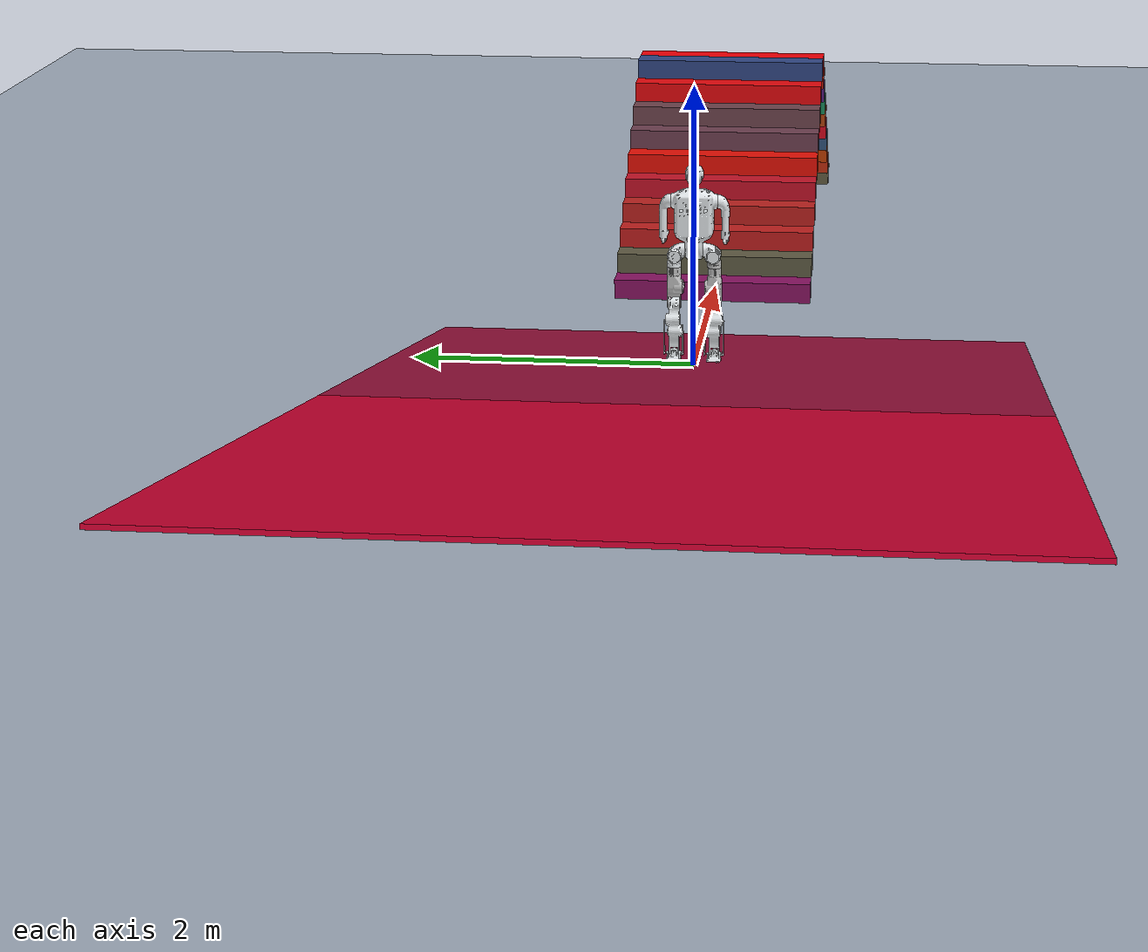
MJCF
<mujoco model="hhfc">
  <compiler angle="radian" meshdir="../meshes/" eulerseq="zyx" />
  <statistic meansize="0.201559" extent="2.948112" center="0.00499457 0 0.337764" />

  <default>
      <joint limited="true" />
      <motor ctrllimited="true" />
      <geom condim="4" contype="1" conaffinity="15" solref="0.001 2" friction="0.9 0.2 0.2" />
      <equality solref="0.001 2" />
      <default class="visualgeom">
          <geom material="visualgeom" condim="1" contype="0" conaffinity="0" />
      </default>
      <default class="visualgeom2">
          <geom material="visualgeom2" condim="1" contype="0" conaffinity="0" />
      </default>
      <default class="obstacle">
          <geom material="obstacle" condim="3" contype="1" conaffinity="15" />
      </default>
      <default class="leg_joint_param">
      <joint damping="0.01" frictionloss="0.01" armature="0.001" />

      </default>
  </default>

  <asset>

    <texture name="grid" type="2d" builtin="checker" width="512" height="512" rgb1=".1 .2 .3" rgb2=".2 .3 .4" />
    <material name="grid" texture="grid" texrepeat="1 1" texuniform="true" reflectance=".2" />
  </asset>

  <option timestep="0.0005" integrator="RK4">
    <flag frictionloss="enable" />
  </option>

  <visual>
    <map stiffness="300" force="0.1" zfar="30" />
    <rgba haze="0.15 0.25 0.35 1" />
    <global offwidth="2560" offheight="1440" elevation="-30" azimuth="120" />
  </visual>

  <asset>
    <mesh name="base_thorax" file="base_thorax.STL" />
    <mesh name="Lleg_hip_p" file="Lleg_hip_p.STL" />
    <mesh name="Lleg_hip_r" file="Lleg_hip_r.STL" />
    <mesh name="Lleg_hip_y" file="Lleg_hip_y.STL" />
    <mesh name="Lleg_knee" file="Lleg_knee.STL" />
    <mesh name="Lleg_ankle_p" file="Lleg_ankle_p.STL" />
    <mesh name="Lleg_ankle_r" file="flat_foot.stl" />
    <mesh name="Rleg_hip_p" file="Rleg_hip_p.STL" />
    <mesh name="Rleg_hip_r" file="Rleg_hip_r.STL" />
    <mesh name="Rleg_hip_y" file="Rleg_hip_y.STL" />
    <mesh name="Rleg_knee" file="Rleg_knee.STL" />
    <mesh name="Rleg_ankle_p" file="Rleg_ankle_p.STL" />
    <mesh name="Rleg_ankle_r" file="flat_foot.stl" />
    <mesh name="Larm_shoulder_p" file="Larm_shoulder_p.STL" />
    <mesh name="Rarm_shoulder_p" file="Rarm_shoulder_p.STL" />

  </asset>

  <worldbody>

    <light name="main_light" diffuse="2 2 2" specular="0.5 0.5 0.5" pos="0 0 40" dir="0 0 -1" castshadow="true" />

    <light name="aux_light1" diffuse=".8 .8 .8" pos=" 10 0 1" dir="-1 0 0" castshadow="false" />
    <light name="aux_light2" diffuse=".8 .8 .8" pos="-10 0 1" dir=" 1 0 0" castshadow="false" />
    <light name="aux_light3" diffuse=".8 .8 .8" pos="0  10 1" dir="0 -1 0" castshadow="false" />
    <light name="aux_light4" diffuse=".8 .8 .8" pos="0 -10 1" dir="0  1 0" castshadow="false" />

    <geom name="floor" type="plane" size="0 0 0.05" material="grid" />

    <body name="base_thorax" pos="0 0 0.94" euler="0 0 0">

      <inertial pos="0.0063842 0.00017156 0.099276" mass="21.7513" fullinertia="0.51774 0.41969 0.193013 3.96E-05 0.000772 0.000516" />
      <freejoint name="base_thorax" />
      <geom size="0.2 0.175 0.3" pos="0 0 0.2" type="box" rgba="0.89804 0.91765 0.92941 0" />
      <geom type="mesh" contype="0" conaffinity="0" group="1" density="0" rgba="0.89804 0.91765 0.92941 1" mesh="base_thorax" />
      <site name="imu_site" pos="0 0 0" size="0.02" rgba="1 0 0 1" type="sphere" />
      <site name="imu" size="0.01" pos="0.0 0 0.0" />

      <body name="Lleg_hip_p" pos="0.0074413 0.070763 -0.096701" quat="1 -1.49195e-05 9.221e-11 -6.1805e-06">

        <inertial pos="-0.0080076 0.037645 -0.018534" quat="0.414257 0.709337 0.188122 0.53837" mass="0.8" diaginertia="0.00249693 0.00187387 0.00185259" />
        <joint name="Lleg_hip_p_joint" pos="0 0 0" axis="0 -1 0" range="-1.5708 3.1416" class="leg_joint_param" />

        <geom type="mesh" contype="0" conaffinity="0" group="1" density="0" rgba="0.89804 0.91765 0.92941 1" mesh="Lleg_hip_p" />

        <body name="Lleg_hip_r" pos="-0.048264 0.063739 -0.039998" quat="1 -1.49194e-05 -1.55901e-05 6.18077e-06">

          <inertial pos="0.042398 0.0021906 -0.014152" quat="0.717776 -0.00466495 -0.115772 0.686566" mass="2.4" diaginertia="0.00470642 0.00421976 0.00322592" />
          <joint name="Lleg_hip_r_joint" pos="0 0 0" axis="1 0 0" range="-0.52359 0.52359" class="leg_joint_param" />
          <geom type="mesh" contype="0" conaffinity="0" group="1" density="0" rgba="0.89804 0.91765 0.92941 1" mesh="Lleg_hip_r" />
          <geom size="0.05 0.1" pos="0.05 0 -0.225" type="cylinder" rgba="0.89804 0.91765 0.92941 0" />

          <body name="Lleg_hip_y" pos="0.048263 0.0075949 -0.073228" quat="1 -0.0006421 0 0">

            <inertial pos="0.0012794 -0.012189 -0.11613" quat="0.996816 -0.0530944 -0.0162506 -0.0572273" mass="4.7" diaginertia="0.0299281 0.0291921 0.00657282" />
            <joint name="Lleg_hip_y_joint" pos="0 0 0" axis="0 0 1" range="-1.0472 1.2217" class="leg_joint_param" />
            <geom type="mesh" contype="0" conaffinity="0" group="1" density="0" rgba="0.75294 0.75294 0.75294 1" mesh="Lleg_hip_y" />

            <body name="Lleg_knee" pos="0 0 -0.27926">

              <inertial pos="-0.0093168 0.0004254 -0.1569" quat="0.997868 -0.0245164 0.0336298 0.0502756" mass="4.4" diaginertia="0.033405 0.0314582 0.0069106" />
              <joint name="Lleg_knee_joint" pos="0 0 0" axis="0 -1 0" range="-1.5708 0" class="leg_joint_param" />

              <geom type="mesh" contype="0" conaffinity="0" group="1" density="0" rgba="0.89804 0.91765 0.92941 1" mesh="Lleg_knee" />
              <geom size="0.05 0.125" pos="0 0 -0.175" type="cylinder" rgba="0.89804 0.91765 0.92941 0" />

              <body name="Lleg_ankle_p" pos="0 0 -0.35">

                <inertial pos="0.00066352 -5.5018e-08 8.196e-09" quat="0.499943 0.499943 -0.500057 0.500057" mass="0.24" diaginertia="0.000135 0.000113 5.24e-05" />
                <joint name="Lleg_ankle_p_joint" pos="0 0 0" axis="0 1 0" range="-1.6108 0.6108" class="leg_joint_param" />
                <geom type="mesh" contype="0" conaffinity="0" group="1" density="0" rgba="0.89804 0.91765 0.92941 1" mesh="Lleg_ankle_p" />

                <body name="Lleg_ankle_r">

                  <inertial pos="0.021653 2.4998e-08 -0.044273" quat="1.13655e-06 0.717415 -1.10364e-06 0.696646" mass="0.88" diaginertia="0.00668964 0.005724 0.00130736" />
                  <joint name="Lleg_ankle_r_joint" pos="0 0 0" axis="1 0 0" range="-0.34453292519943295 0.34453292519943295" class="leg_joint_param" />
                  <geom type="mesh" contype="0" conaffinity="0" group="1" density="0" rgba="0.89804 0.91765 0.92941 1" mesh="Lleg_ankle_r" />
                  <geom name="r_collision_1" type="mesh" rgba="0.89804 0.91765 0.92941 0" mesh="Lleg_ankle_r" />

                </body>
              </body>
            </body>
          </body>
        </body>
      </body>

      <body name="Rleg_hip_p" pos="0.0074402 -0.070762 -0.096701" quat="1 1.49195e-05 -9.221e-11 -6.1805e-06">

        <inertial pos="-0.0080033 -0.037645 -0.018534" quat="0.709009 0.414898 0.538551 0.187424" mass="0.8" diaginertia="0.00249686 0.00187362 0.00185253" />
        <joint name="Rleg_hip_p_joint" pos="0 0 0" axis="0 -1 0" range="-1.5708 3.1416" class="leg_joint_param" />

        <geom type="mesh" contype="0" conaffinity="0" group="1" density="0" rgba="0.89804 0.91765 0.92941 1" mesh="Rleg_hip_p" />

        <body name="Rleg_hip_r" pos="-0.048261 -0.063738 -0.039998" quat="1 -1.49194e-05 -1.55901e-05 6.18077e-06">

          <inertial pos="0.042392 -0.0022474 -0.014239" quat="0.688789 -0.114585 -0.00306577 0.715843" mass="2.4" diaginertia="0.00471825 0.00423405 0.00323269" />
          <joint name="Rleg_hip_r_joint" pos="0 0 0" axis="1 0 0" range="-0.52359 0.52359" class="leg_joint_param" />
          <geom type="mesh" contype="0" conaffinity="0" group="1" density="0" rgba="0.75294 0.75294 0.75294 1" mesh="Rleg_hip_r" />
          <geom size="0.05 0.1" pos="0.05 0 -0.225" type="cylinder" rgba="0.75294 0.75294 0.75294 0" />

          <body name="Rleg_hip_y" pos="0.048263 -0.0075949 -0.073228" quat="1 -0.0006421 1.559e-05 1.00103e-08">

            <inertial pos="0.0012651 0.012199 -0.11598" quat="0.996226 0.0535852 -0.0154666 0.0665041" mass="4.7" diaginertia="0.0298237 0.0290669 0.00653037" />
            <joint name="Rleg_hip_y_joint" pos="0 0 0" axis="0 0 1" range="-1.2217 1.0472" class="leg_joint_param" />
            <geom type="mesh" contype="0" conaffinity="0" group="1" density="0" rgba="0.75294 0.75294 0.75294 1" mesh="Rleg_hip_y" />

            <body name="Rleg_knee" pos="0 0 -0.27926">

              <inertial pos="-0.0080323 -0.0016076 -0.15944" quat="0.503618 0.498429 -0.471667 0.524851" mass="4.4" diaginertia="0.0334195 0.0311732 0.00644732" />
              <joint name="Rleg_knee_joint" pos="0 0 0" axis="0 -1 0" range="-1.5708 0" class="leg_joint_param" />

              <geom type="mesh" contype="0" conaffinity="0" group="1" density="0" rgba="0.89804 0.91765 0.92941 1" mesh="Rleg_knee" />
              <geom size="0.05 0.125" pos="0 0 -0.175" type="cylinder" rgba="0.89804 0.91765 0.92941 0" />

              <body name="Rleg_ankle_p" pos="0 0 -0.35">

                <inertial pos="0.00099756 8.2521e-08 6.9572e-08" quat="0.5 0.5 -0.5 0.5" mass="0.24" diaginertia="0.000135 0.000113 5.3e-05" />
                <joint name="Rleg_ankle_p_joint" pos="0 0 0" axis="0 1 0" range="-1.6108 0.6108" class="leg_joint_param" />
                <geom type="mesh" contype="0" conaffinity="0" group="1" density="0" rgba="0.89804 0.91765 0.92941 1" mesh="Rleg_ankle_p" />

                <body name="Rleg_ankle_r">

                  <inertial pos="0.021653 2.5592e-08 -0.044273" quat="0 0.717415 0 0.696646" mass="0.88" diaginertia="0.00668964 0.005725 0.00130736" />
                  <joint name="Rleg_ankle_r_joint" pos="0 0 0" axis="1 0 0" range="-0.34453292519943295 0.34453292519943295" class="leg_joint_param" />
                  <geom type="mesh" contype="0" conaffinity="0" group="1" density="0" rgba="0.89804 0.91765 0.92941 1" mesh="Rleg_ankle_r" />
                  <geom name="l_collision_1" type="mesh" rgba="0.89804 0.91765 0.92941 0" mesh="Lleg_ankle_r" />

                </body>
              </body>
            </body>
          </body>
        </body>
      </body>
      <body name="Larm_shoulder_p" pos="0.0074411 0.17676 0.2503" quat="1 -1.559e-05 0 0">

        <inertial pos="-4.0039e-06 0.029969 -0.17382" quat="0.706747 0.0225512 -0.0225512 0.706747" mass="0.9" diaginertia="0.0219046 0.021867 0.000591376" />
        <joint name="Larm_shoulder_p_joint" pos="0 0 0" axis="0 -1 0" range="-3.1416 3.1416" class="leg_joint_param" />
        <geom type="mesh" contype="0" conaffinity="0" group="1" density="0" rgba="0.89804 0.91765 0.92941 1" mesh="Larm_shoulder_p" />
      </body>

      <body name="Rarm_shoulder_p" pos="0.0074404 -0.17676 0.2503" quat="1 1.55905e-05 0.0008107 -1.26392e-08">

        <inertial pos="0.00016699 -0.03005 -0.17441" quat="0.706778 -0.0228932 0.0222331 0.706716" mass="0.9" diaginertia="0.0219559 0.021918 0.000591056" />
        <joint name="Rarm_shoulder_p_joint" pos="0 0 0" axis="0 -1 0" range="-3.1416 3.1416" class="leg_joint_param" />
        <geom type="mesh" contype="0" conaffinity="0" group="1" density="0" rgba="0.89804 0.91765 0.92941 1" mesh="Rarm_shoulder_p" />
      </body>
    </body>

  <geom pos="1.7 0.0 0.075" type="box" size="0.1 0.75 0.075" quat="1.0 0.0 0.0 0.0" rgba="0.5397997475476835 0.07426366960848095 0.3859365828438356 0.95" /><geom pos="1.9 0.0 0.22499999999999998" type="box" size="0.1 0.75 0.075" quat="1.0 0.0 0.0 0.0" rgba="0.3750912169712648 0.3590917137309976 0.26581706929773763 0.95" /><geom pos="2.1 0.0 0.375" type="box" size="0.1 0.75 0.075" quat="1.0 0.0 0.0 0.0" rgba="0.7567677870938795 0.12244413676564676 0.12078807614047375 0.95" /><geom pos="2.3 0.0 0.525" type="box" size="0.1 0.75 0.075" quat="1.0 0.0 0.0 0.0" rgba="0.7439661617475152 0.1338779716960094 0.12215586655647542 0.95" /><geom pos="2.5 0.0 0.675" type="box" size="0.1 0.75 0.075" quat="1.0 0.0 0.0 0.0" rgba="0.7755515487961796 0.07035144351446061 0.1540970076893598 0.95" /><geom pos="2.7 0.0 0.8250000000000001" type="box" size="0.1 0.75 0.075" quat="1.0 0.0 0.0 0.0" rgba="0.9140699938574047 0.06498308634593701 0.02094691979665826 0.95" /><geom pos="2.9 0.0 0.9750000000000001" type="box" size="0.1 0.75 0.075" quat="1.0 0.0 0.0 0.0" rgba="0.43449971185918546 0.2504180996024353 0.31508218853837927 0.95" /><geom pos="3.0999999999999996 0.0 1.125" type="box" size="0.1 0.75 0.075" quat="1.0 0.0 0.0 0.0" rgba="0.43190150711416453 0.26503099176137784 0.30306750112445763 0.95" /><geom pos="3.3 0.0 1.275" type="box" size="0.1 0.75 0.075" quat="1.0 0.0 0.0 0.0" rgba="0.9131090922330632 0.03271106750080695 0.054179840266129806 0.95" /><geom pos="3.5 0.0 1.4249999999999998" type="box" size="0.1 0.75 0.075" quat="1.0 0.0 0.0 0.0" rgba="0.19088555366452553 0.27885943723555684 0.5302550090999176 0.95" /><geom pos="5.5 2.4492935982947065e-17 0.075" type="box" size="0.1 0.75 0.075" quat="6.123233995736766e-17 0.0 0.0 1.0" rgba="0.38218346170963846 0.361831071176206 0.25598546711415554 0.95" /><geom pos="5.3 4.898587196589413e-17 0.22499999999999998" type="box" size="0.1 0.75 0.075" quat="6.123233995736766e-17 0.0 0.0 1.0" rgba="0.7634020247975014 0.18014925797268394 0.05644871722981465 0.95" /><geom pos="5.1 7.34788079488412e-17 0.375" type="box" size="0.1 0.75 0.075" quat="6.123233995736766e-17 0.0 0.0 1.0" rgba="0.7545182960762787 0.24394726189889604 0.0015344420248252222 0.95" /><geom pos="4.9 9.797174393178826e-17 0.525" type="box" size="0.1 0.75 0.075" quat="6.123233995736766e-17 0.0 0.0 1.0" rgba="0.19497571449965867 0.32365504620926683 0.4813692392910745 0.95" /><geom pos="4.7 1.2246467991473532e-16 0.675" type="box" size="0.1 0.75 0.075" quat="6.123233995736766e-17 0.0 0.0 1.0" rgba="0.850856338535478 0.031532409572029955 0.117611251892492 0.95" /><geom pos="4.5 1.4695761589768238e-16 0.8250000000000001" type="box" size="0.1 0.75 0.075" quat="6.123233995736766e-17 0.0 0.0 1.0" rgba="0.6934222100773635 0.2558456283420486 0.05073216158058791 0.95" /><geom pos="4.300000000000001 1.7145055188062944e-16 0.9750000000000001" type="box" size="0.1 0.75 0.075" quat="6.123233995736766e-17 0.0 0.0 1.0" rgba="0.10193342540757178 0.5413069698319448 0.3567596047604834 0.95" /><geom pos="4.1000000000000005 1.959434878635765e-16 1.125" type="box" size="0.1 0.75 0.075" quat="6.123233995736766e-17 0.0 0.0 1.0" rgba="0.36194673110267794 0.12477520749800297 0.5132780613993191 0.95" /><geom pos="3.9000000000000004 2.2043642384652356e-16 1.275" type="box" size="0.1 0.75 0.075" quat="6.123233995736766e-17 0.0 0.0 1.0" rgba="0.804383721901977 0.1331696627483209 0.062446615349702056 0.95" /><geom pos="3.7 2.449293598294706e-16 1.4249999999999998" type="box" size="0.1 0.75 0.075" quat="6.123233995736766e-17 0.0 0.0 1.0" rgba="0.9671947700888948 0.0016648014867131067 0.03114042842439213 0.95" /><geom pos="-1.0 0.0 0.0" type="box" size="5.0 2.5 0.015" quat="0.9950041652780258 0.0 0.09983341664682815 0.0" rgba="0.8088683555467092 0.0007840408292459022 0.19034760362404488 0.95" /></worldbody>

  <contact>

  </contact>

  <actuator>
    <motor name="Lleg_hip_p_joint" joint="Lleg_hip_p_joint" gear="1" ctrllimited="true" ctrlrange="-200 200" />
    <motor name="Lleg_hip_r_joint" joint="Lleg_hip_r_joint" gear="1" ctrllimited="true" ctrlrange="-200 200" />
    <motor name="Lleg_hip_y_joint" joint="Lleg_hip_y_joint" gear="1" ctrllimited="true" ctrlrange="-200 200" />
    <motor name="Lleg_knee_joint" joint="Lleg_knee_joint" gear="1" ctrllimited="true" ctrlrange="-200 200" />
    <motor name="Lleg_ankle_p_joint" joint="Lleg_ankle_p_joint" gear="1" ctrllimited="true" ctrlrange="-200 200" />
    <motor name="Lleg_ankle_r_joint" joint="Lleg_ankle_r_joint" gear="1" ctrllimited="true" ctrlrange="-200 200" />

    <motor name="Rleg_hip_p_joint" joint="Rleg_hip_p_joint" gear="1" ctrllimited="true" ctrlrange="-200 200" />
    <motor name="Rleg_hip_r_joint" joint="Rleg_hip_r_joint" gear="1" ctrllimited="true" ctrlrange="-200 200" />
    <motor name="Rleg_hip_y_joint" joint="Rleg_hip_y_joint" gear="1" ctrllimited="true" ctrlrange="-200 200" />
    <motor name="Rleg_knee_joint" joint="Rleg_knee_joint" gear="1" ctrllimited="true" ctrlrange="-200 200" />
    <motor name="Rleg_ankle_p_joint" joint="Rleg_ankle_p_joint" gear="1" ctrllimited="true" ctrlrange="-200 200" />
    <motor name="Rleg_ankle_r_joint" joint="Rleg_ankle_r_joint" gear="1" ctrllimited="true" ctrlrange="-200 200" />

    <motor name="Larm_shoulder_p_joint" joint="Larm_shoulder_p_joint" gear="1" ctrllimited="true" ctrlrange="-200 200" />
    <motor name="Rarm_shoulder_p_joint" joint="Rarm_shoulder_p_joint" gear="1" ctrllimited="true" ctrlrange="-200 200" />
  </actuator>

  <sensor>
    <accelerometer name="imu_acc" site="imu_site" />
    <gyro name="imu_gyro" site="imu_site" />
    <framepos name="imu_pos" objtype="site" objname="imu_site" />
    <framelinvel name="imu_linvel" objtype="site" objname="imu_site" />

    <framequat name="orientation" objtype="site" noise="0.001" objname="imu" />
    <framepos name="position" objtype="site" noise="0.001" objname="imu" />
    <gyro name="angular-velocity" site="imu" noise="0.005" cutoff="34.9" />
    <velocimeter name="linear-velocity" site="imu" noise="0.001" cutoff="30" />
    <accelerometer name="linear-acceleration" site="imu" noise="0.005" cutoff="157" />
    <magnetometer name="magnetometer" site="imu" />
  </sensor>
</mujoco>
